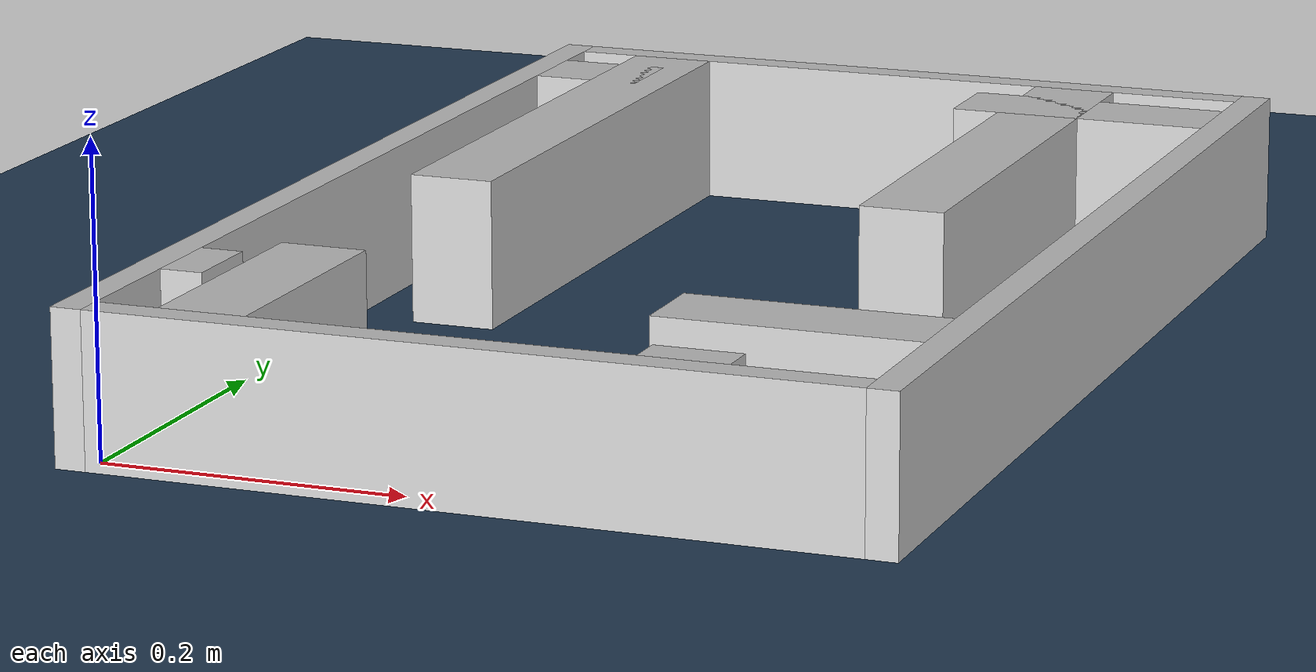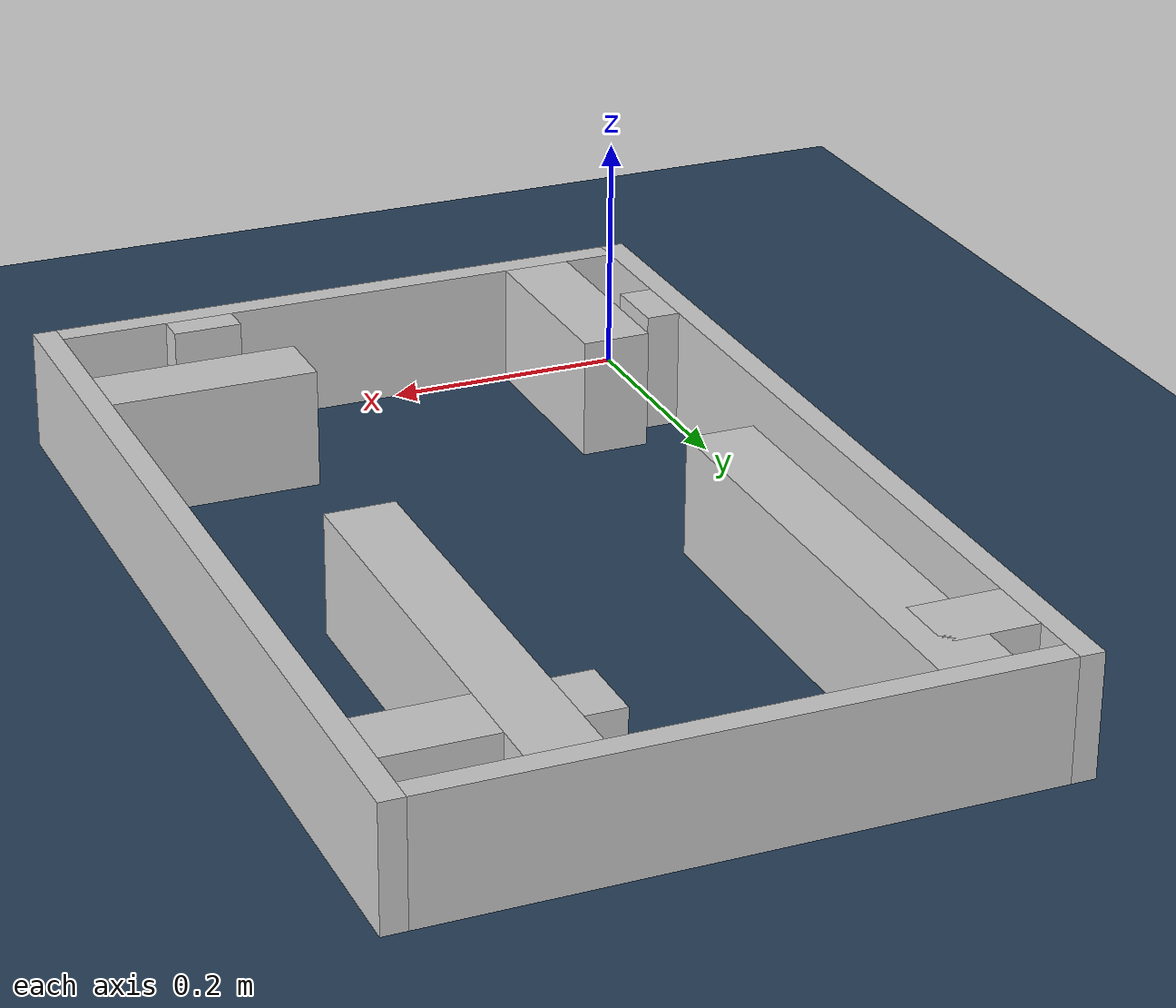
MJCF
<?xml version="1.0" ?>
<mujoco model="generated_real_template">
  <compiler angle="degree"/>
  <option timestep="0.002" integrator="implicitfast" iterations="100" cone="elliptic"/>
  <default>
    <geom density="1"/>
  </default>
  <asset>
    <texture builtin="gradient" height="3072" rgb1="0.3 0.5 0.7" rgb2="0 0 0" type="skybox" width="512"/>
    <texture builtin="checker" height="300" mark="edge" markrgb="0.8 0.8 0.8" name="groundplane" rgb1="0.2 0.3 0.4" rgb2="0.1 0.2 0.3" type="2d" width="300"/>
    <material name="groundplane" reflectance="0.2" texrepeat="5 5" texture="groundplane" texuniform="true"/>
  </asset>
  <worldbody>
    <light dir="0 0 -1" directional="true" pos="0 0 1.5"/>
    <geom name="floor" type="plane" condim="4" friction="0.5 0.005 0.001" material="groundplane" size="0 0 0.05"/>
    <body name="walls">
      <geom name="wall_boundary_left" type="box" condim="4" friction="1.0 0.005 0.0001" rgba="0.8 0.8 0.8 1" pos="-0.010000 0.387500 0.050000" euler="0 0 0.000000" size="0.010000 0.407500 0.050000"/>
      <geom name="wall_boundary_right" type="box" condim="4" friction="1.0 0.005 0.0001" rgba="0.8 0.8 0.8 1" pos="0.500000 0.387500 0.050000" euler="0 0 0.000000" size="0.010000 0.407500 0.050000"/>
      <geom name="wall_boundary_bottom" type="box" condim="4" friction="1.0 0.005 0.0001" rgba="0.8 0.8 0.8 1" pos="0.245000 -0.010000 0.050000" euler="0 0 0.000000" size="0.245000 0.010000 0.050000"/>
      <geom name="wall_boundary_top" type="box" condim="4" friction="1.0 0.005 0.0001" rgba="0.8 0.8 0.8 1" pos="0.245000 0.785000 0.050000" euler="0 0 0.000000" size="0.245000 0.010000 0.050000"/>
      <geom name="wall_inner_1_1" type="box" condim="4" friction="1.0 0.005 0.0001" rgba="0.8 0.8 0.8 1" pos="0.373475 0.012331 0.050000" euler="0 0 90.000000" size="0.012331 0.028500 0.050000"/>
      <geom name="wall_inner_1_2" type="box" condim="4" friction="1.0 0.005 0.0001" rgba="0.8 0.8 0.8 1" pos="0.373475 0.582342 0.050000" euler="0 0 90.000000" size="0.192658 0.028500 0.050000"/>
      <geom name="wall_inner_2_1" type="box" condim="4" friction="1.0 0.005 0.0001" rgba="0.8 0.8 0.8 1" pos="0.014102 0.113352 0.050000" euler="0 0 0.000000" size="0.014102 0.028500 0.050000"/>
      <geom name="wall_inner_2_2" type="box" condim="4" friction="1.0 0.005 0.0001" rgba="0.8 0.8 0.8 1" pos="0.404773 0.113352 0.050000" euler="0 0 0.000000" size="0.085227 0.028500 0.050000"/>
      <geom name="wall_inner_3_1" type="box" condim="4" friction="1.0 0.005 0.0001" rgba="0.8 0.8 0.8 1" pos="0.069581 0.085717 0.050000" euler="0 0 90.000000" size="0.085717 0.028500 0.050000"/>
      <geom name="wall_inner_3_2" type="box" condim="4" friction="1.0 0.005 0.0001" rgba="0.8 0.8 0.8 1" pos="0.069581 0.572056 0.050000" euler="0 0 90.000000" size="0.202944 0.028500 0.050000"/>
      <geom name="wall_inner_4_1" type="box" condim="4" friction="1.0 0.005 0.0001" rgba="0.8 0.8 0.8 1" pos="0.037611 0.713567 0.050000" euler="0 0 0.000000" size="0.037611 0.028500 0.050000"/>
      <geom name="wall_inner_4_2" type="box" condim="4" friction="1.0 0.005 0.0001" rgba="0.8 0.8 0.8 1" pos="0.401295 0.713567 0.050000" euler="0 0 0.000000" size="0.088705 0.028500 0.050000"/>
    </body>
  </worldbody>
</mujoco>
